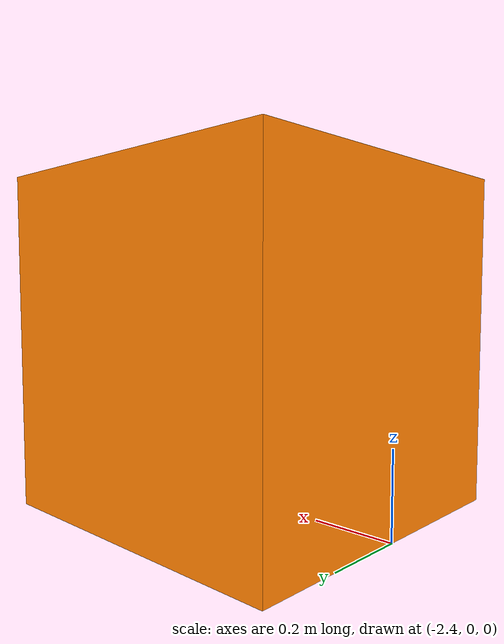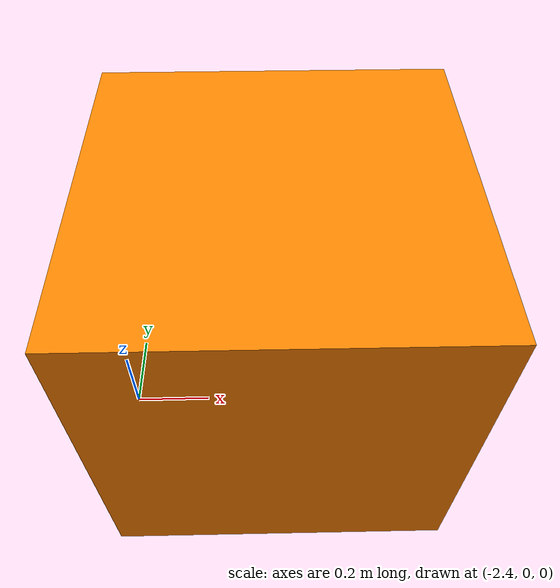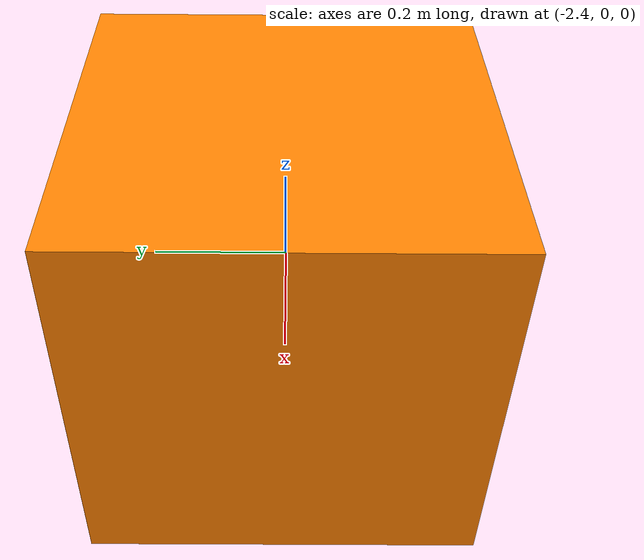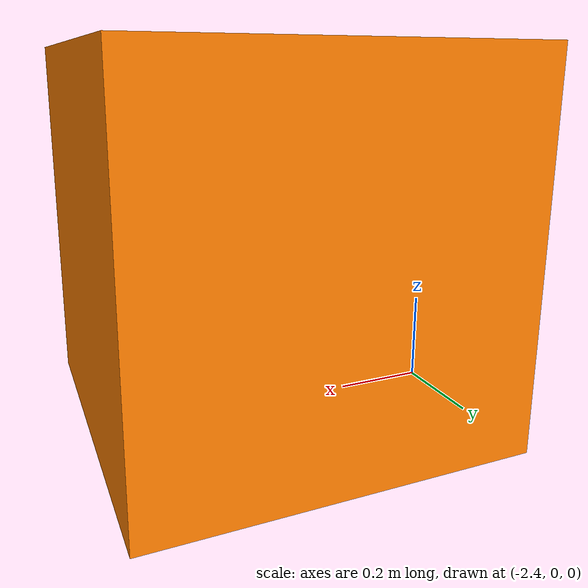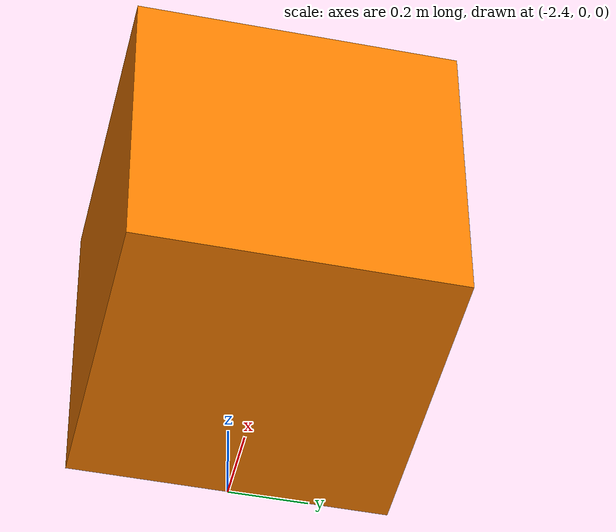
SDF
<?xml version="1.0" ?>
<sdf version="1.10">
<model name="orangeBox0_8x0_8x0_8">
  <static>true</static>
  <pose>-2 0 0.4 0 0 0</pose>
  <link name="link">

    <collision name="collision">
      <geometry>
        <box>
          <size>0.8 0.8 0.8</size>
        </box>
      </geometry>
    </collision>

    <!-- Orange box visual -->
    <visual name="visual">
      <geometry>
        <box>
          <size>0.8 0.8 0.8</size>
        </box>
      </geometry>
      <material>
        <ambient>1 0.5 0 1</ambient>
        <diffuse>1 0.5 0 1</diffuse>
      </material>
      <plugin
        filename="gz-sim-thermal-system"
        name="gz::sim::systems::Thermal">
        <temperature>513.15</temperature>
        <emissivity>0.9</emissivity>
      </plugin>
    </visual>

    <!-- Thermal core visual -->
    <visual name="thermal_core">
      <pose>0 0 0.25 1.5708 0 0</pose>
      <geometry>
        <sphere>
          <radius>0.08</radius>
        </sphere>
      </geometry>
      <material>
        <ambient>1 0.4 0 1</ambient>
        <diffuse>1 0.4 0 1</diffuse>
      </material>
      <plugin
        filename="gz-sim-thermal-system"
        name="gz::sim::systems::Thermal">
        <temperature>583.83</temperature>
        <emissivity>0.9</emissivity>
      </plugin>
    </visual>

    <!-- 3. CLEANED PARTICLE EMITTER: Removed invalid nested tags for Ionic -->
    <particle_emitter name="fire" type="box">
      <pose>0 0 0.25 1.5708 0 0</pose>
      <size>0.15 0.15 0.30</size>
      <rate>50</rate>
      <particle_size>0.05 0.05 0.05</particle_size>
      <lifetime>1</lifetime>
      <!-- Simplified for Ionic stability -->
      <min_velocity>2.5</min_velocity>
      <max_velocity>3.5</max_velocity>
      <color_start>0.6 0 0 0</color_start>
      <color_end>1 0.8 0.2 1</color_end>
      <scale_rate>0.4</scale_rate>
      <emitting>true</emitting>
    </particle_emitter>

  </link>
</model>
</sdf>
